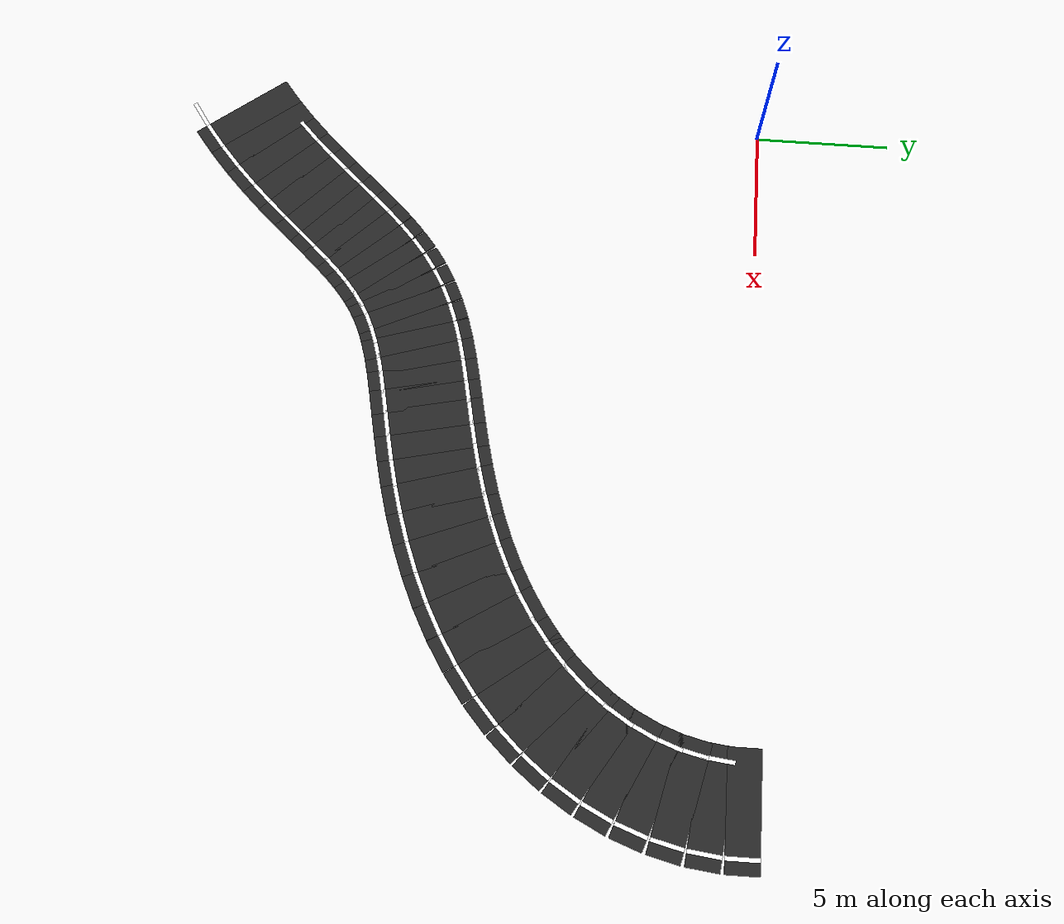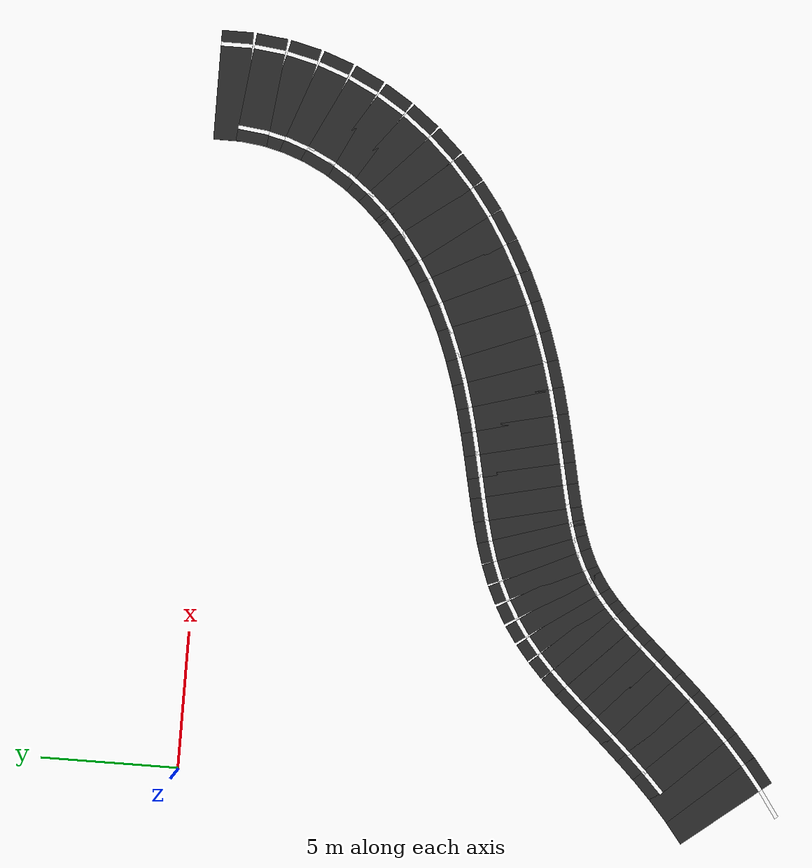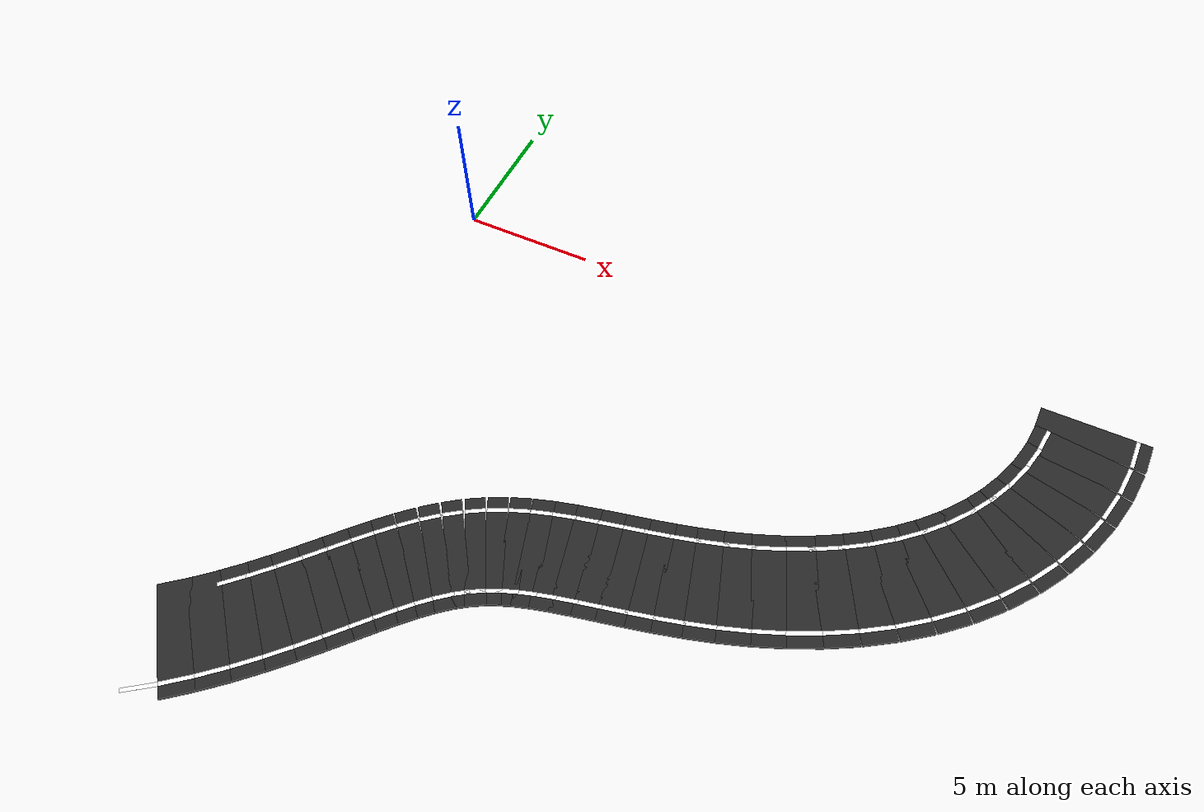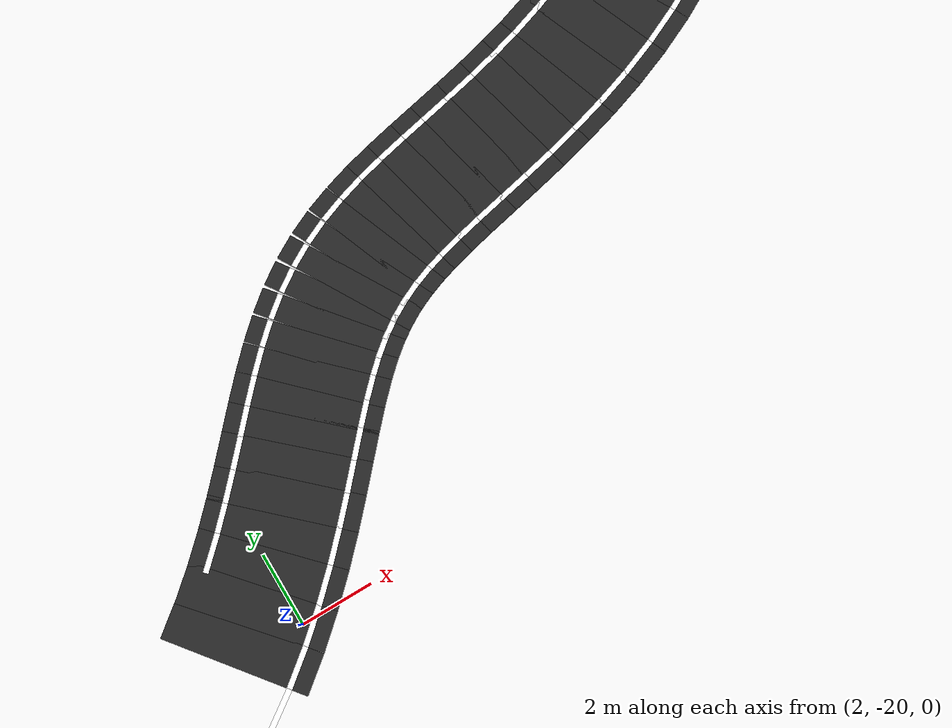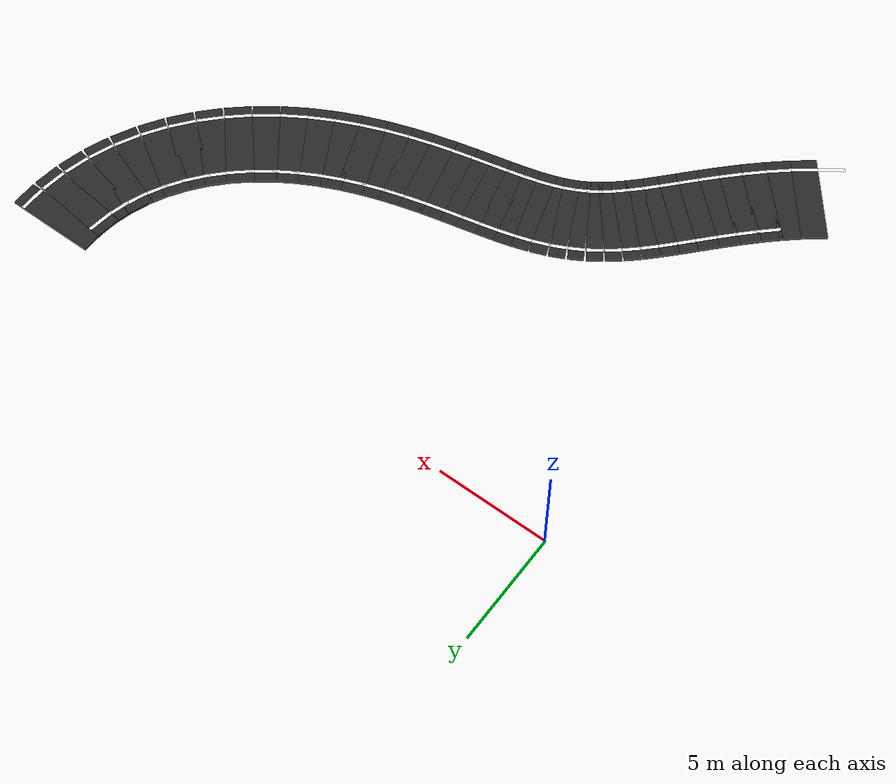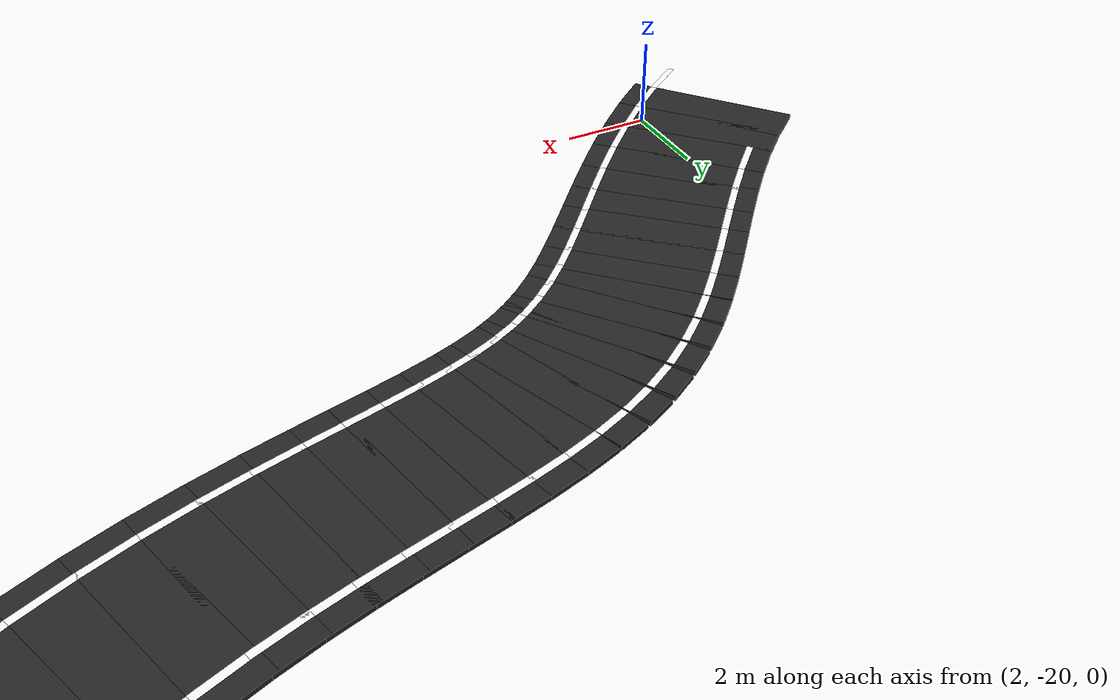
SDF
<sdf version="1.9">
 <world name="curved_race_track">
  <model name="race_track">
   <static>true</static>
   <link name="asphalt_0">
    <pose>25.0 0.0 0.05 0 0 1.5707963267948966</pose>
    <visual name="v">
     <geometry><box><size>1.1517413086948718 4.0 0.1</size></box></geometry>
     <material><ambient>0.15 0.15 0.15 1</ambient><diffuse>0.15 0.15 0.15 1</diffuse></material>
    </visual>
    <collision name="c"><geometry><box><size>1.1517413086948718 4.0 0.1</size></box></geometry></collision>
   </link>
   <link name="right_line_0">
    <pose>26.5 -9.184850993605148e-17 0.101 0 0 1.5707963267948966</pose>
    <visual name="v">
     <geometry><box><size>1.1517413086948718 0.15 0.001</size></box></geometry>
     <material><ambient>1 1 1 1</ambient><emissive>0.3 0.3 0.3 1</emissive></material>
    </visual>
   </link>
   <link name="right_line_112">
    <pose>0.438977393311072 -21.53538949489919 0.101 0 0 0.614153779554633</pose>
    <visual name="v">
     <geometry><box><size>1.1514998059888797 0.15 0.001</size></box></geometry>
     <material><ambient>1 1 1 1</ambient><emissive>0.3 0.3 0.3 1</emissive></material>
    </visual>
   </link>
   <link name="asphalt_113">
    <pose>0.41227347054374264 -19.681729926843133 0.05 0 0 0.6711042868066445</pose>
    <visual name="v">
     <geometry><box><size>1.125249442199038 4.0 0.1</size></box></geometry>
     <material><ambient>0.15 0.15 0.15 1</ambient><diffuse>0.15 0.15 0.15 1</diffuse></material>
    </visual>
    <collision name="c"><geometry><box><size>1.125249442199038 4.0 0.1</size></box></geometry></collision>
   </link>
   <link name="right_line_113">
    <pose>1.345050228775634 -20.856433089051528 0.101 0 0 0.6711042868066445</pose>
    <visual name="v">
     <geometry><box><size>1.125249442199038 0.15 0.001</size></box></geometry>
     <material><ambient>1 1 1 1</ambient><emissive>0.3 0.3 0.3 1</emissive></material>
    </visual>
   </link>
   <link name="asphalt_114">
    <pose>1.196981540121641 -19.025476766742543 0.05 0 0 0.7208431750793264</pose>
    <visual name="v">
     <geometry><box><size>1.0928661026760036 4.0 0.1</size></box></geometry>
     <material><ambient>0.15 0.15 0.15 1</ambient><diffuse>0.15 0.15 0.15 1</diffuse></material>
    </visual>
    <collision name="c"><geometry><box><size>1.0928661026760036 4.0 0.1</size></box></geometry></collision>
   </link>
   <link name="right_line_114">
    <pose>2.1870090521598753 -20.152350994599132 0.101 0 0 0.7208431750793264</pose>
    <visual name="v">
     <geometry><box><size>1.0928661026760036 0.15 0.001</size></box></geometry>
     <material><ambient>1 1 1 1</ambient><emissive>0.3 0.3 0.3 1</emissive></material>
    </visual>
   </link>
   <link name="asphalt_115">
    <pose>1.9290639076250644 -18.35381707263156 0.05 0 0 0.7627858314045766</pose>
    <visual name="v">
     <geometry><box><size>1.054758407267773 4.0 0.1</size></box></geometry>
     <material><ambient>0.15 0.15 0.15 1</ambient><diffuse>0.15 0.15 0.15 1</diffuse></material>
    </visual>
    <collision name="c"><geometry><box><size>1.054758407267773 4.0 0.1</size></box></geometry></collision>
   </link>
   <link name="left_line_115">
    <pose>0.8926568474570413 -17.269446100300655 0.101 0 0 0.7627858314045766</pose>
    <visual name="v">
     <geometry><box><size>1.054758407267773 0.15 0.001</size></box></geometry>
     <material><ambient>1 1 1 1</ambient><emissive>0.3 0.3 0.3 1</emissive></material>
    </visual>
   </link>
   <link name="right_line_115">
    <pose>2.9654709677930873 -19.438188044962466 0.101 0 0 0.7627858314045766</pose>
    <visual name="v">
     <geometry><box><size>1.054758407267773 0.15 0.001</size></box></geometry>
     <material><ambient>1 1 1 1</ambient><emissive>0.3 0.3 0.3 1</emissive></material>
    </visual>
   </link>
   <link name="asphalt_116">
    <pose>2.6106649291933066 -17.679388293790236 0.05 0 0 0.7961363461453753</pose>
    <visual name="v">
     <geometry><box><size>1.0116441791363973 4.0 0.1</size></box></geometry>
     <material><ambient>0.15 0.15 0.15 1</ambient><diffuse>0.15 0.15 0.15 1</diffuse></material>
    </visual>
    <collision name="c"><geometry><box><size>1.0116441791363973 4.0 0.1</size></box></geometry></collision>
   </link>
   <link name="left_line_116">
    <pose>1.5386765645554514 -16.63017861689955 0.101 0 0 0.7961363461453753</pose>
    <visual name="v">
     <geometry><box><size>1.0116441791363973 0.15 0.001</size></box></geometry>
     <material><ambient>1 1 1 1</ambient><emissive>0.3 0.3 0.3 1</emissive></material>
    </visual>
   </link>
   <link name="right_line_116">
    <pose>3.682653293831162 -18.728597970680923 0.101 0 0 0.7961363461453753</pose>
    <visual name="v">
     <geometry><box><size>1.0116441791363973 0.15 0.001</size></box></geometry>
     <material><ambient>1 1 1 1</ambient><emissive>0.3 0.3 0.3 1</emissive></material>
    </visual>
   </link>
   <link name="asphalt_117">
    <pose>3.2456066455473884 -17.014065868040365 0.05 0 0 0.8198519989587237</pose>
    <visual name="v">
     <geometry><box><size>0.964579854375917 4.0 0.1</size></box></geometry>
     <material><ambient>0.15 0.15 0.15 1</ambient><diffuse>0.15 0.15 0.15 1</diffuse></material>
    </visual>
    <collision name="c"><geometry><box><size>0.964579854375917 4.0 0.1</size></box></geometry></collision>
   </link>
   <link name="left_line_117">
    <pose>2.1490393671415133 -15.990571752801038 0.101 0 0 0.8198519989587237</pose>
    <visual name="v">
     <geometry><box><size>0.964579854375917 0.15 0.001</size></box></geometry>
     <material><ambient>1 1 1 1</ambient><emissive>0.3 0.3 0.3 1</emissive></material>
    </visual>
   </link>
   <link name="right_line_117">
    <pose>4.342173923953263 -18.037559983279692 0.101 0 0 0.8198519989587237</pose>
    <visual name="v">
     <geometry><box><size>0.964579854375917 0.15 0.001</size></box></geometry>
     <material><ambient>1 1 1 1</ambient><emissive>0.3 0.3 0.3 1</emissive></material>
    </visual>
   </link>
   <link name="asphalt_118">
    <pose>3.839235788770516 -16.368665314440403 0.05 0 0 0.8326241010271148</pose>
    <visual name="v">
     <geometry><box><size>0.9149951303041162 4.0 0.1</size></box></geometry>
     <material><ambient>0.15 0.15 0.15 1</ambient><diffuse>0.15 0.15 0.15 1</diffuse></material>
    </visual>
    <collision name="c"><geometry><box><size>0.9149951303041162 4.0 0.1</size></box></geometry></collision>
   </link>
   <link name="left_line_118">
    <pose>2.7296861328839057 -15.359259766049716 0.101 0 0 0.8326241010271148</pose>
    <visual name="v">
     <geometry><box><size>0.9149951303041162 0.15 0.001</size></box></geometry>
     <material><ambient>1 1 1 1</ambient><emissive>0.3 0.3 0.3 1</emissive></material>
    </visual>
   </link>
   <link name="right_line_118">
    <pose>4.948785444657126 -17.37807086283109 0.101 0 0 0.8326241010271148</pose>
    <visual name="v">
     <geometry><box><size>0.9149951303041162 0.15 0.001</size></box></geometry>
     <material><ambient>1 1 1 1</ambient><emissive>0.3 0.3 0.3 1</emissive></material>
    </visual>
   </link>
   <link name="asphalt_119">
    <pose>4.398225849703698 -15.7526748644423 0.05 0 0 0.8329008863833195</pose>
    <visual name="v">
     <geometry><box><size>0.8647287213029898 4.0 0.1</size></box></geometry>
     <material><ambient>0.15 0.15 0.15 1</ambient><diffuse>0.15 0.15 0.15 1</diffuse></material>
    </visual>
    <collision name="c"><geometry><box><size>0.8647287213029898 4.0 0.1</size></box></geometry></collision>
   </link>
   <link name="left_line_119">
    <pose>3.2883968476477614 -14.74357646180977 0.101 0 0 0.8329008863833195</pose>
    <visual name="v">
     <geometry><box><size>0.8647287213029898 0.15 0.001</size></box></geometry>
     <material><ambient>1 1 1 1</ambient><emissive>0.3 0.3 0.3 1</emissive></material>
    </visual>
   </link>
   <link name="right_line_119">
    <pose>5.508054851759634 -16.76177326707483 0.101 0 0 0.8329008863833195</pose>
    <visual name="v">
     <geometry><box><size>0.8647287213029898 0.15 0.001</size></box></geometry>
     <material><ambient>1 1 1 1</ambient><emissive>0.3 0.3 0.3 1</emissive></material>
    </visual>
   </link>
   <link name="asphalt_120">
    <pose>4.9303398874989455 -15.174025904434007 0.05 0 0 0.8190008985651853</pose>
    <visual name="v">
     <geometry><box><size>0.8160515710137803 4.0 0.1</size></box></geometry>
     <material><ambient>0.15 0.15 0.15 1</ambient><diffuse>0.15 0.15 0.15 1</diffuse></material>
    </visual>
    <collision name="c"><geometry><box><size>0.8160515710137803 4.0 0.1</size></box></geometry></collision>
   </link>
   <link name="left_line_120">
    <pose>3.834644102393395 -14.149598871160318 0.101 0 0 0.8190008985651853</pose>
    <visual name="v">
     <geometry><box><size>0.8160515710137803 0.15 0.001</size></box></geometry>
     <material><ambient>1 1 1 1</ambient><emissive>0.3 0.3 0.3 1</emissive></material>
    </visual>
   </link>
   <link name="right_line_120">
    <pose>6.026035672604496 -16.198452937707696 0.101 0 0 0.8190008985651853</pose>
    <visual name="v">
     <geometry><box><size>0.8160515710137803 0.15 0.001</size></box></geometry>
     <material><ambient>1 1 1 1</ambient><emissive>0.3 0.3 0.3 1</emissive></material>
    </visual>
   </link>
   <link name="asphalt_121">
    <pose>5.444160878712941 -14.6389074474551 0.05 0 0 0.7893931278671149</pose>
    <visual name="v">
     <geometry><box><size>0.7716463724455348 4.0 0.1</size></box></geometry>
     <material><ambient>0.15 0.15 0.15 1</ambient><diffuse>0.15 0.15 0.15 1</diffuse></material>
    </visual>
    <collision name="c"><geometry><box><size>0.7716463724455348 4.0 0.1</size></box></geometry></collision>
   </link>
   <link name="left_line_121">
    <pose>4.379271882423113 -13.582493028024523 0.101 0 0 0.7893931278671149</pose>
    <visual name="v">
     <geometry><box><size>0.7716463724455348 0.15 0.001</size></box></geometry>
     <material><ambient>1 1 1 1</ambient><emissive>0.3 0.3 0.3 1</emissive></material>
    </visual>
   </link>
   <link name="right_line_121">
    <pose>6.509049875002768 -15.695321866885678 0.101 0 0 0.7893931278671149</pose>
    <visual name="v">
     <geometry><box><size>0.7716463724455348 0.15 0.001</size></box></geometry>
     <material><ambient>1 1 1 1</ambient><emissive>0.3 0.3 0.3 1</emissive></material>
    </visual>
   </link>
   <link name="asphalt_122">
    <pose>5.948797328050253 -14.151629624000888 0.05 0 0 0.7432291564322886</pose>
    <visual name="v">
     <geometry><box><size>0.7344883325544567 4.0 0.1</size></box></geometry>
     <material><ambient>0.15 0.15 0.15 1</ambient><diffuse>0.15 0.15 0.15 1</diffuse></material>
    </visual>
    <collision name="c"><geometry><box><size>0.7344883325544567 4.0 0.1</size></box></geometry></collision>
   </link>
   <link name="left_line_122">
    <pose>4.93379379440341 -13.04719862720461 0.101 0 0 0.7432291564322886</pose>
    <visual name="v">
     <geometry><box><size>0.7344883325544567 0.15 0.001</size></box></geometry>
     <material><ambient>1 1 1 1</ambient><emissive>0.3 0.3 0.3 1</emissive></material>
    </visual>
   </link>
   <link name="right_line_122">
    <pose>6.963800861697095 -15.256060620797166 0.101 0 0 0.7432291564322886</pose>
    <visual name="v">
     <geometry><box><size>0.7344883325544567 0.15 0.001</size></box></geometry>
     <material><ambient>1 1 1 1</ambient><emissive>0.3 0.3 0.3 1</emissive></material>
    </visual>
   </link>
   <link name="asphalt_123">
    <pose>6.453572570465406 -13.714539815559204 0.05 0 0 0.6811395040169054</pose>
    <visual name="v">
     <geometry><box><size>0.707559002608347 4.0 0.1</size></box></geometry>
     <material><ambient>0.15 0.15 0.15 1</ambient><diffuse>0.15 0.15 0.15 1</diffuse></material>
    </visual>
    <collision name="c"><geometry><box><size>0.707559002608347 4.0 0.1</size></box></geometry></collision>
   </link>
   <link name="left_line_123">
    <pose>5.509054576221962 -12.549256262705933 0.101 0 0 0.6811395040169054</pose>
    <visual name="v">
     <geometry><box><size>0.707559002608347 0.15 0.001</size></box></geometry>
     <material><ambient>1 1 1 1</ambient><emissive>0.3 0.3 0.3 1</emissive></material>
    </visual>
   </link>
   <link name="right_line_123">
    <pose>7.39809056470885 -14.879823368412476 0.101 0 0 0.6811395040169054</pose>
    <visual name="v">
     <geometry><box><size>0.707559002608347 0.15 0.001</size></box></geometry>
     <material><ambient>1 1 1 1</ambient><emissive>0.3 0.3 0.3 1</emissive></material>
    </visual>
   </link>
   <link name="asphalt_124">
    <pose>6.967706664881618 -13.327993588060306 0.05 0 0 0.6060704634767349</pose>
    <visual name="v">
     <geometry><box><size>0.6933651874997708 4.0 0.1</size></box></geometry>
     <material><ambient>0.15 0.15 0.15 1</ambient><diffuse>0.15 0.15 0.15 1</diffuse></material>
    </visual>
    <collision name="c"><geometry><box><size>0.6933651874997708 4.0 0.1</size></box></geometry></collision>
   </link>
   <link name="left_line_124">
    <pose>6.113243351867827 -12.095154406855597 0.101 0 0 0.6060704634767349</pose>
    <visual name="v">
     <geometry><box><size>0.6933651874997708 0.15 0.001</size></box></geometry>
     <material><ambient>1 1 1 1</ambient><emissive>0.3 0.3 0.3 1</emissive></material>
    </visual>
   </link>
   <link name="right_line_124">
    <pose>7.822169977895409 -14.560832769265014 0.101 0 0 0.6060704634767349</pose>
    <visual name="v">
     <geometry><box><size>0.6933651874997708 0.15 0.001</size></box></geometry>
     <material><ambient>1 1 1 1</ambient><emissive>0.3 0.3 0.3 1</emissive></material>
    </visual>
   </link>
   <link name="asphalt_125">
    <pose>7.500000000000002 -12.990381056766578 0.05 0 0 0.5235987755982997</pose>
    <visual name="v">
     <geometry><box><size>0.6933651874997535 4.0 0.1</size></box></geometry>
     <material><ambient>0.15 0.15 0.15 1</ambient><diffuse>0.15 0.15 0.15 1</diffuse></material>
    </visual>
    <collision name="c"><geometry><box><size>0.6933651874997535 4.0 0.1</size></box></geometry></collision>
   </link>
   <link name="left_line_125">
    <pose>6.750000000000001 -11.69134295108992 0.101 0 0 0.5235987755982997</pose>
    <visual name="v">
     <geometry><box><size>0.6933651874997535 0.15 0.001</size></box></geometry>
     <material><ambient>1 1 1 1</ambient><emissive>0.3 0.3 0.3 1</emissive></material>
    </visual>
   </link>
   <link name="right_line_125">
    <pose>8.250000000000004 -14.289419162443236 0.101 0 0 0.5235987755982997</pose>
    <visual name="v">
     <geometry><box><size>0.6933651874997535 0.15 0.001</size></box></geometry>
     <material><ambient>1 1 1 1</ambient><emissive>0.3 0.3 0.3 1</emissive></material>
    </visual>
   </link>
   <link name="asphalt_126">
    <pose>8.058527696295517 -12.698207771935786 0.05 0 0 0.4411270877198633</pose>
    <visual name="v">
     <geometry><box><size>0.7075590026083473 4.0 0.1</size></box></geometry>
     <material><ambient>0.15 0.15 0.15 1</ambient><diffuse>0.15 0.15 0.15 1</diffuse></material>
    </visual>
    <collision name="c"><geometry><box><size>0.7075590026083473 4.0 0.1</size></box></geometry></collision>
   </link>
   <link name="left_line_126">
    <pose>7.418089303098327 -11.341801245661674 0.101 0 0 0.4411270877198633</pose>
    <visual name="v">
     <geometry><box><size>0.7075590026083473 0.15 0.001</size></box></geometry>
     <material><ambient>1 1 1 1</ambient><emissive>0.3 0.3 0.3 1</emissive></material>
    </visual>
   </link>
   <link name="right_line_126">
    <pose>8.698966089492707 -14.054614298209898 0.101 0 0 0.4411270877198633</pose>
    <visual name="v">
     <geometry><box><size>0.7075590026083473 0.15 0.001</size></box></geometry>
     <material><ambient>1 1 1 1</ambient><emissive>0.3 0.3 0.3 1</emissive></material>
    </visual>
   </link>
   <link name="asphalt_127">
    <pose>8.650353596254709 -12.44622769896909 0.05 0 0 0.36605804717969276</pose>
    <visual name="v">
     <geometry><box><size>0.7344883325544719 4.0 0.1</size></box></geometry>
     <material><ambient>0.15 0.15 0.15 1</ambient><diffuse>0.15 0.15 0.15 1</diffuse></material>
    </visual>
    <collision name="c"><geometry><box><size>0.7344883325544719 4.0 0.1</size></box></geometry></collision>
   </link>
   <link name="left_line_127">
    <pose>8.113447433993311 -11.045609345196107 0.101 0 0 0.36605804717969276</pose>
    <visual name="v">
     <geometry><box><size>0.7344883325544719 0.15 0.001</size></box></geometry>
     <material><ambient>1 1 1 1</ambient><emissive>0.3 0.3 0.3 1</emissive></material>
    </visual>
   </link>
   <link name="right_line_127">
    <pose>9.187259758516106 -13.846846052742071 0.101 0 0 0.36605804717969276</pose>
    <visual name="v">
     <geometry><box><size>0.7344883325544719 0.15 0.001</size></box></geometry>
     <material><ambient>1 1 1 1</ambient><emissive>0.3 0.3 0.3 1</emissive></material>
    </visual>
   </link>
   <link name="asphalt_128">
    <pose>9.28127209530807 -12.227624420056955 0.05 0 0 0.30396839476430887</pose>
    <visual name="v">
     <geometry><box><size>0.7716463724455166 4.0 0.1</size></box></geometry>
     <material><ambient>0.15 0.15 0.15 1</ambient><diffuse>0.15 0.15 0.15 1</diffuse></material>
    </visual>
    <collision name="c"><geometry><box><size>0.7716463724455166 4.0 0.1</size></box></geometry></collision>
   </link>
   <link name="left_line_128">
    <pose>8.832308562178945 -10.796390076589676 0.101 0 0 0.30396839476430887</pose>
    <visual name="v">
     <geometry><box><size>0.7716463724455166 0.15 0.001</size></box></geometry>
     <material><ambient>1 1 1 1</ambient><emissive>0.3 0.3 0.3 1</emissive></material>
    </visual>
   </link>
   <link name="right_line_128">
    <pose>9.730235628437196 -13.658858763524234 0.101 0 0 0.30396839476430887</pose>
    <visual name="v">
     <geometry><box><size>0.7716463724455166 0.15 0.001</size></box></geometry>
     <material><ambient>1 1 1 1</ambient><emissive>0.3 0.3 0.3 1</emissive></material>
    </visual>
   </link>
   <link name="asphalt_129">
    <pose>9.955585293788847 -12.034235346982374 0.05 0 0 0.25780442332948283</pose>
    <visual name="v">
     <geometry><box><size>0.8160515710137942 4.0 0.1</size></box></geometry>
     <material><ambient>0.15 0.15 0.15 1</ambient><diffuse>0.15 0.15 0.15 1</diffuse></material>
    </visual>
    <collision name="c"><geometry><box><size>0.8160515710137942 4.0 0.1</size></box></geometry></collision>
   </link>
   <link name="left_line_129">
    <pose>9.573148067782691 -10.583807214269582 0.101 0 0 0.25780442332948283</pose>
    <visual name="v">
     <geometry><box><size>0.8160515710137942 0.15 0.001</size></box></geometry>
     <material><ambient>1 1 1 1</ambient><emissive>0.3 0.3 0.3 1</emissive></material>
    </visual>
   </link>
   <link name="right_line_129">
    <pose>10.338022519795002 -13.484663479695167 0.101 0 0 0.25780442332948283</pose>
    <visual name="v">
     <geometry><box><size>0.8160515710137942 0.15 0.001</size></box></geometry>
     <material><ambient>1 1 1 1</ambient><emissive>0.3 0.3 0.3 1</emissive></material>
    </visual>
   </link>
   <link name="asphalt_130">
    <pose>10.675921967173519 -11.856812544082798 0.05 0 0 0.22819665263141317</pose>
    <visual name="v">
     <geometry><box><size>0.8647287213029772 4.0 0.1</size></box></geometry>
     <material><ambient>0.15 0.15 0.15 1</ambient><diffuse>0.15 0.15 0.15 1</diffuse></material>
    </visual>
    <collision name="c"><geometry><box><size>0.8647287213029772 4.0 0.1</size></box></geometry></collision>
   </link>
   <link name="left_line_130">
    <pose>10.336590024587752 -10.395698642725012 0.101 0 0 0.22819665263141317</pose>
    <visual name="v">
     <geometry><box><size>0.8647287213029772 0.15 0.001</size></box></geometry>
     <material><ambient>1 1 1 1</ambient><emissive>0.3 0.3 0.3 1</emissive></material>
    </visual>
   </link>
   <link name="right_line_130">
    <pose>11.015253909759286 -13.317926445440584 0.101 0 0 0.22819665263141317</pose>
    <visual name="v">
     <geometry><box><size>0.8647287213029772 0.15 0.001</size></box></geometry>
     <material><ambient>1 1 1 1</ambient><emissive>0.3 0.3 0.3 1</emissive></material>
    </visual>
   </link>
   <link name="asphalt_131">
    <pose>11.44310368531176 -11.685312749645956 0.05 0 0 0.21429666481327805</pose>
    <visual name="v">
     <geometry><box><size>0.914995130304108 4.0 0.1</size></box></geometry>
     <material><ambient>0.15 0.15 0.15 1</ambient><diffuse>0.15 0.15 0.15 1</diffuse></material>
    </visual>
    <collision name="c"><geometry><box><size>0.914995130304108 4.0 0.1</size></box></geometry></collision>
   </link>
   <link name="left_line_131">
    <pose>11.12411333474166 -10.219623438692517 0.101 0 0 0.21429666481327805</pose>
    <visual name="v">
     <geometry><box><size>0.914995130304108 0.15 0.001</size></box></geometry>
     <material><ambient>1 1 1 1</ambient><emissive>0.3 0.3 0.3 1</emissive></material>
    </visual>
   </link>
   <link name="right_line_131">
    <pose>11.76209403588186 -13.151002060599394 0.101 0 0 0.21429666481327805</pose>
    <visual name="v">
     <geometry><box><size>0.914995130304108 0.15 0.001</size></box></geometry>
     <material><ambient>1 1 1 1</ambient><emissive>0.3 0.3 0.3 1</emissive></material>
    </visual>
   </link>
   <link name="asphalt_132">
    <pose>12.256062093965307 -11.509208381413853 0.05 0 0 0.2145734501694828</pose>
    <visual name="v">
     <geometry><box><size>0.9645798543759153 4.0 0.1</size></box></geometry>
     <material><ambient>0.15 0.15 0.15 1</ambient><diffuse>0.15 0.15 0.15 1</diffuse></material>
    </visual>
    <collision name="c"><geometry><box><size>0.9645798543759153 4.0 0.1</size></box></geometry></collision>
   </link>
   <link name="left_line_132">
    <pose>11.936666074281314 -10.043607418460422 0.101 0 0 0.2145734501694828</pose>
    <visual name="v">
     <geometry><box><size>0.9645798543759153 0.15 0.001</size></box></geometry>
     <material><ambient>1 1 1 1</ambient><emissive>0.3 0.3 0.3 1</emissive></material>
    </visual>
   </link>
   <link name="right_line_132">
    <pose>12.575458113649299 -12.974809344367284 0.101 0 0 0.2145734501694828</pose>
    <visual name="v">
     <geometry><box><size>0.9645798543759153 0.15 0.001</size></box></geometry>
     <material><ambient>1 1 1 1</ambient><emissive>0.3 0.3 0.3 1</emissive></material>
    </visual>
   </link>
   <link name="asphalt_133">
    <pose>13.111809940610977 -11.317810739755814 0.05 0 0 0.22734555223787425</pose>
    <visual name="v">
     <geometry><box><size>1.0116441791364041 4.0 0.1</size></box></geometry>
     <material><ambient>0.15 0.15 0.15 1</ambient><diffuse>0.15 0.15 0.15 1</diffuse></material>
    </visual>
    <collision name="c"><geometry><box><size>1.0116441791364041 4.0 0.1</size></box></geometry></collision>
   </link>
   <link name="left_line_133">
    <pose>12.77372167539278 -9.856408562077899 0.101 0 0 0.22734555223787425</pose>
    <visual name="v">
     <geometry><box><size>1.0116441791364041 0.15 0.001</size></box></geometry>
     <material><ambient>1 1 1 1</ambient><emissive>0.3 0.3 0.3 1</emissive></material>
    </visual>
   </link>
   <link name="right_line_133">
    <pose>13.449898205829173 -12.779212917433728 0.101 0 0 0.22734555223787425</pose>
    <visual name="v">
     <geometry><box><size>1.0116441791364041 0.15 0.001</size></box></geometry>
     <material><ambient>1 1 1 1</ambient><emissive>0.3 0.3 0.3 1</emissive></material>
    </visual>
   </link>
   <link name="asphalt_134">
    <pose>14.0054669211949 -11.10059629634563 0.05 0 0 0.25106120505122187</pose>
    <visual name="v">
     <geometry><box><size>1.0547584072677958 4.0 0.1</size></box></geometry>
     <material><ambient>0.15 0.15 0.15 1</ambient><diffuse>0.15 0.15 0.15 1</diffuse></material>
    </visual>
    <collision name="c"><geometry><box><size>1.0547584072677958 4.0 0.1</size></box></geometry></collision>
   </link>
   <link name="left_line_134">
    <pose>13.632818869430032 -9.647622301562569 0.101 0 0 0.25106120505122187</pose>
    <visual name="v">
     <geometry><box><size>1.0547584072677958 0.15 0.001</size></box></geometry>
     <material><ambient>1 1 1 1</ambient><emissive>0.3 0.3 0.3 1</emissive></material>
    </visual>
   </link>
   <link name="right_line_134">
    <pose>14.378114972959768 -12.553570291128691 0.101 0 0 0.25106120505122187</pose>
    <visual name="v">
     <geometry><box><size>1.0547584072677958 0.15 0.001</size></box></geometry>
     <material><ambient>1 1 1 1</ambient><emissive>0.3 0.3 0.3 1</emissive></material>
    </visual>
   </link>
   <link name="asphalt_135">
    <pose>14.930339887498945 -10.847526885842765 0.05 0 0 0.2844117197920213</pose>
    <visual name="v">
     <geometry><box><size>1.0928661026759754 4.0 0.1</size></box></geometry>
     <material><ambient>0.15 0.15 0.15 1</ambient><diffuse>0.15 0.15 0.15 1</diffuse></material>
    </visual>
    <collision name="c"><geometry><box><size>1.0928661026759754 4.0 0.1</size></box></geometry></collision>
   </link>
   <link name="left_line_135">
    <pose>14.509450608417959 -9.407786556910256 0.101 0 0 0.2844117197920213</pose>
    <visual name="v">
     <geometry><box><size>1.0928661026759754 0.15 0.001</size></box></geometry>
     <material><ambient>1 1 1 1</ambient><emissive>0.3 0.3 0.3 1</emissive></material>
    </visual>
   </link>
   <link name="right_line_135">
    <pose>15.351229166579932 -12.287267214775273 0.101 0 0 0.2844117197920213</pose>
    <visual name="v">
     <geometry><box><size>1.0928661026759754 0.15 0.001</size></box></geometry>
     <material><ambient>1 1 1 1</ambient><emissive>0.3 0.3 0.3 1</emissive></material>
    </visual>
   </link>
   <link name="asphalt_136">
    <pose>15.878055429048826 -10.549354804977638 0.05 0 0 0.3263543761172706</pose>
    <visual name="v">
     <geometry><box><size>1.1252494421990478 4.0 0.1</size></box></geometry>
     <material><ambient>0.15 0.15 0.15 1</ambient><diffuse>0.15 0.15 0.15 1</diffuse></material>
    </visual>
    <collision name="c"><geometry><box><size>1.1252494421990478 4.0 0.1</size></box></geometry></collision>
   </link>
   <link name="left_line_136">
    <pose>15.397167476874165 -9.128528715178728 0.101 0 0 0.3263543761172706</pose>
    <visual name="v">
     <geometry><box><size>1.1252494421990478 0.15 0.001</size></box></geometry>
     <material><ambient>1 1 1 1</ambient><emissive>0.3 0.3 0.3 1</emissive></material>
    </visual>
   </link>
   <link name="right_line_136">
    <pose>16.358943381223487 -11.970180894776547 0.101 0 0 0.3263543761172706</pose>
    <visual name="v">
     <geometry><box><size>1.1252494421990478 0.15 0.001</size></box></geometry>
     <material><ambient>1 1 1 1</ambient><emissive>0.3 0.3 0.3 1</emissive></material>
    </visual>
   </link>
   <link name="asphalt_137">
    <pose>16.838741371798715 -10.197904262218833 0.05 0 0 0.37609326438995266</pose>
    <visual name="v">
     <geometry><box><size>1.1514998059889001 4.0 0.1</size></box></geometry>
     <material><ambient>0.15 0.15 0.15 1</ambient><diffuse>0.15 0.15 0.15 1</diffuse></material>
    </visual>
    <collision name="c"><geometry><box><size>1.1514998059889001 4.0 0.1</size></box></geometry></collision>
   </link>
   <link name="left_line_137">
    <pose>16.28780697053628 -8.802744312426121 0.101 0 0 0.37609326438995266</pose>
    <visual name="v">
     <geometry><box><size>1.1514998059889001 0.15 0.001</size></box></geometry>
     <material><ambient>1 1 1 1</ambient><emissive>0.3 0.3 0.3 1</emissive></material>
    </visual>
   </link>
   <link name="right_line_137">
    <pose>17.38967577306115 -11.593064212011544 0.101 0 0 0.37609326438995266</pose>
    <visual name="v">
     <geometry><box><size>1.1514998059889001 0.15 0.001</size></box></geometry>
     <material><ambient>1 1 1 1</ambient><emissive>0.3 0.3 0.3 1</emissive></material>
    </visual>
   </link>
   <link name="asphalt_138">
    <pose>17.801252359412082 -9.78632129944432 0.05 0 0 0.43304377164196517</pose>
    <visual name="v">
     <geometry><box><size>1.1714934133066284 4.0 0.1</size></box></geometry>
     <material><ambient>0.15 0.15 0.15 1</ambient><diffuse>0.15 0.15 0.15 1</diffuse></material>
    </visual>
    <collision name="c"><geometry><box><size>1.1714934133066284 4.0 0.1</size></box></geometry></collision>
   </link>
   <link name="left_line_138">
    <pose>17.171799032504463 -8.42478227714458 0.101 0 0 0.43304377164196517</pose>
    <visual name="v">
     <geometry><box><size>1.1714934133066284 0.15 0.001</size></box></geometry>
     <material><ambient>1 1 1 1</ambient><emissive>0.3 0.3 0.3 1</emissive></material>
    </visual>
   </link>
   <link name="right_line_138">
    <pose>18.4307056863197 -11.147860321744059 0.101 0 0 0.43304377164196517</pose>
    <visual name="v">
     <geometry><box><size>1.1714934133066284 0.15 0.001</size></box></geometry>
     <material><ambient>1 1 1 1</ambient><emissive>0.3 0.3 0.3 1</emissive></material>
    </visual>
   </link>
   <link name="asphalt_139">
    <pose>18.75343344040603 -9.309285205632204 0.05 0 0 0.4967923461851671</pose>
    <visual name="v">
     <geometry><box><size>1.1853701260313456 4.0 0.1</size></box></geometry>
     <material><ambient>0.15 0.15 0.15 1</ambient><diffuse>0.15 0.15 0.15 1</diffuse></material>
    </visual>
    <collision name="c"><geometry><box><size>1.1853701260313456 4.0 0.1</size></box></geometry></collision>
   </link>
   <link name="left_line_139">
    <pose>18.038521296456896 -7.990611392123324 0.101 0 0 0.4967923461851671</pose>
    <visual name="v">
     <geometry><box><size>1.1853701260313456 0.15 0.001</size></box></geometry>
     <material><ambient>1 1 1 1</ambient><emissive>0.3 0.3 0.3 1</emissive></material>
    </visual>
   </link>
   <link name="right_line_139">
    <pose>19.468345584355166 -10.627959019141084 0.101 0 0 0.4967923461851671</pose>
    <visual name="v">
     <geometry><box><size>1.1853701260313456 0.15 0.001</size></box></geometry>
     <material><ambient>1 1 1 1</ambient><emissive>0.3 0.3 0.3 1</emissive></material>
    </visual>
   </link>
   <link name="asphalt_140">
    <pose>19.682414510580028 -8.7631755362432 0.05 0 0 0.5670555777992988</pose>
    <visual name="v">
     <geometry><box><size>1.193512979184859 4.0 0.1</size></box></geometry>
     <material><ambient>0.15 0.15 0.15 1</ambient><diffuse>0.15 0.15 0.15 1</diffuse></material>
    </visual>
    <collision name="c"><geometry><box><size>1.193512979184859 4.0 0.1</size></box></geometry></collision>
   </link>
   <link name="left_line_140">
    <pose>18.876688308791273 -7.49794619428536 0.101 0 0 0.5670555777992988</pose>
    <visual name="v">
     <geometry><box><size>1.193512979184859 0.15 0.001</size></box></geometry>
     <material><ambient>1 1 1 1</ambient><emissive>0.3 0.3 0.3 1</emissive></material>
    </visual>
   </link>
   <link name="right_line_140">
    <pose>20.488140712368782 -10.028404878201039 0.101 0 0 0.5670555777992988</pose>
    <visual name="v">
     <geometry><box><size>1.193512979184859 0.15 0.001</size></box></geometry>
     <material><ambient>1 1 1 1</ambient><emissive>0.3 0.3 0.3 1</emissive></material>
    </visual>
   </link>
   <link name="asphalt_141">
    <pose>20.574927585141825 -8.14619010994253 0.05 0 0 0.643638903945526</pose>
    <visual name="v">
     <geometry><box><size>1.1965258177165055 4.0 0.1</size></box></geometry>
     <material><ambient>0.15 0.15 0.15 1</ambient><diffuse>0.15 0.15 0.15 1</diffuse></material>
    </visual>
    <collision name="c"><geometry><box><size>1.1965258177165055 4.0 0.1</size></box></geometry></collision>
   </link>
   <link name="left_line_141">
    <pose>19.674762239504034 -6.946314136971658 0.101 0 0 0.643638903945526</pose>
    <visual name="v">
     <geometry><box><size>1.1965258177165055 0.15 0.001</size></box></geometry>
     <material><ambient>1 1 1 1</ambient><emissive>0.3 0.3 0.3 1</emissive></material>
    </visual>
   </link>
   <link name="right_line_141">
    <pose>21.475092930779617 -9.346066082913403 0.101 0 0 0.643638903945526</pose>
    <visual name="v">
     <geometry><box><size>1.1965258177165055 0.15 0.001</size></box></geometry>
     <material><ambient>1 1 1 1</ambient><emissive>0.3 0.3 0.3 1</emissive></material>
    </visual>
   </link>
   <link name="asphalt_142">
    <pose>21.417638223340845 -7.458410741258802 0.05 0 0 0.7263937155008071</pose>
    <visual name="v">
     <geometry><box><size>1.195206337205942 4.0 0.1</size></box></geometry>
     <material><ambient>0.15 0.15 0.15 1</ambient><diffuse>0.15 0.15 0.15 1</diffuse></material>
    </visual>
    <collision name="c"><geometry><box><size>1.195206337205942 4.0 0.1</size></box></geometry></collision>
   </link>
   <link name="left_line_142">
    <pose>20.42137123305919 -6.337049031516966 0.101 0 0 0.7263937155008071</pose>
    <visual name="v">
     <geometry><box><size>1.195206337205942 0.15 0.001</size></box></geometry>
     <material><ambient>1 1 1 1</ambient><emissive>0.3 0.3 0.3 1</emissive></material>
    </visual>
   </link>
   <link name="right_line_142">
    <pose>22.4139052136225 -8.579772451000636 0.101 0 0 0.7263937155008071</pose>
    <visual name="v">
     <geometry><box><size>1.195206337205942 0.15 0.001</size></box></geometry>
     <material><ambient>1 1 1 1</ambient><emissive>0.3 0.3 0.3 1</emissive></material>
    </visual>
   </link>
   <link name="asphalt_143">
    <pose>22.197482018546857 -6.701814944752318 0.05 0 0 0.815171453326417</pose>
    <visual name="v">
     <geometry><box><size>1.1905118190556854 4.0 0.1</size></box></geometry>
     <material><ambient>0.15 0.15 0.15 1</ambient><diffuse>0.15 0.15 0.15 1</diffuse></material>
    </visual>
    <collision name="c"><geometry><box><size>1.1905118190556854 4.0 0.1</size></box></geometry></collision>
   </link>
   <link name="left_line_143">
    <pose>21.10571724506638 -5.673199526149658 0.101 0 0 0.815171453326417</pose>
    <visual name="v">
     <geometry><box><size>1.1905118190556854 0.15 0.001</size></box></geometry>
     <material><ambient>1 1 1 1</ambient><emissive>0.3 0.3 0.3 1</emissive></material>
    </visual>
   </link>
   <link name="right_line_143">
    <pose>23.289246792027335 -7.730430363354977 0.101 0 0 0.815171453326417</pose>
    <visual name="v">
     <geometry><box><size>1.1905118190556854 0.15 0.001</size></box></geometry>
     <material><ambient>1 1 1 1</ambient><emissive>0.3 0.3 0.3 1</emissive></material>
    </visual>
   </link>
   <link name="asphalt_144">
    <pose>22.901996910129757 -5.880233371797855 0.05 0 0 0.9097741710061537</pose>
    <visual name="v">
     <geometry><box><size>1.183515067173741 4.0 0.1</size></box></geometry>
     <material><ambient>0.15 0.15 0.15 1</ambient><diffuse>0.15 0.15 0.15 1</diffuse></material>
    </visual>
    <collision name="c"><geometry><box><size>1.183515067173741 4.0 0.1</size></box></geometry></collision>
   </link>
   <link name="left_line_144">
    <pose>21.71794923316846 -4.9593473317893455 0.101 0 0 0.9097741710061537</pose>
    <visual name="v">
     <geometry><box><size>1.183515067173741 0.15 0.001</size></box></geometry>
     <material><ambient>1 1 1 1</ambient><emissive>0.3 0.3 0.3 1</emissive></material>
    </visual>
   </link>
   <link name="right_line_144">
    <pose>24.086044587091052 -6.801119411806365 0.101 0 0 0.9097741710061537</pose>
    <visual name="v">
     <geometry><box><size>1.183515067173741 0.15 0.001</size></box></geometry>
     <material><ambient>1 1 1 1</ambient><emissive>0.3 0.3 0.3 1</emissive></material>
    </visual>
   </link>
   <link name="asphalt_145">
    <pose>23.51964217467976 -4.999254272359185 0.05 0 0 1.0099029445805539</pose>
    <visual name="v">
     <geometry><box><size>1.175348766869148 4.0 0.1</size></box></geometry>
     <material><ambient>0.15 0.15 0.15 1</ambient><diffuse>0.15 0.15 0.15 1</diffuse></material>
    </visual>
    <collision name="c"><geometry><box><size>1.175348766869148 4.0 0.1</size></box></geometry></collision>
   </link>
   <link name="left_line_145">
    <pose>22.249471843683427 -4.201339909625523 0.101 0 0 1.0099029445805539</pose>
    <visual name="v">
     <geometry><box><size>1.175348766869148 0.15 0.001</size></box></geometry>
     <material><ambient>1 1 1 1</ambient><emissive>0.3 0.3 0.3 1</emissive></material>
    </visual>
   </link>
   <link name="right_line_145">
    <pose>24.789812505676093 -5.797168635092846 0.101 0 0 1.0099029445805539</pose>
    <visual name="v">
     <geometry><box><size>1.175348766869148 0.15 0.001</size></box></geometry>
     <material><ambient>1 1 1 1</ambient><emissive>0.3 0.3 0.3 1</emissive></material>
    </visual>
   </link>
   <link name="asphalt_146">
    <pose>24.040095310318407 -4.066077768171354 0.05 0 0 1.1151083193804645</pose>
    <visual name="v">
     <geometry><box><size>1.167138017327684 4.0 0.1</size></box></geometry>
     <material><ambient>0.15 0.15 0.15 1</ambient><diffuse>0.15 0.15 0.15 1</diffuse></material>
    </visual>
    <collision name="c"><geometry><box><size>1.167138017327684 4.0 0.1</size></box></geometry></collision>
   </link>
   <link name="left_line_146">
    <pose>22.693157616906888 -3.405957438180479 0.101 0 0 1.1151083193804645</pose>
    <visual name="v">
     <geometry><box><size>1.167138017327684 0.15 0.001</size></box></geometry>
     <material><ambient>1 1 1 1</ambient><emissive>0.3 0.3 0.3 1</emissive></material>
    </visual>
   </link>
   <link name="right_line_146">
    <pose>25.387033003729925 -4.72619809816223 0.101 0 0 1.1151083193804645</pose>
    <visual name="v">
     <geometry><box><size>1.167138017327684 0.15 0.001</size></box></geometry>
     <material><ambient>1 1 1 1</ambient><emissive>0.3 0.3 0.3 1</emissive></material>
    </visual>
   </link>
   <link name="asphalt_147">
    <pose>24.454518629220786 -3.0893241386282453 0.05 0 0 1.2247501611225673</pose>
    <visual name="v">
     <geometry><box><size>1.1599233334616215 4.0 0.1</size></box></geometry>
     <material><ambient>0.15 0.15 0.15 1</ambient><diffuse>0.15 0.15 0.15 1</diffuse></material>
    </visual>
    <collision name="c"><geometry><box><size>1.1599233334616215 4.0 0.1</size></box></geometry></collision>
   </link>
   <link name="left_line_147">
    <pose>23.04343693732441 -2.580552619383245 0.101 0 0 1.2247501611225673</pose>
    <visual name="v">
     <geometry><box><size>1.1599233334616215 0.15 0.001</size></box></geometry>
     <material><ambient>1 1 1 1</ambient><emissive>0.3 0.3 0.3 1</emissive></material>
    </visual>
   </link>
   <link name="right_line_147">
    <pose>25.86560032111716 -3.5980956578732455 0.101 0 0 1.2247501611225673</pose>
    <visual name="v">
     <geometry><box><size>1.1599233334616215 0.15 0.001</size></box></geometry>
     <material><ambient>1 1 1 1</ambient><emissive>0.3 0.3 0.3 1</emissive></material>
    </visual>
   </link>
   <link name="asphalt_148">
    <pose>24.75578820326005 -2.078801616702521 0.05 0 0 1.337976616167748</pose>
    <visual name="v">
     <geometry><box><size>1.1545797828012354 4.0 0.1</size></box></geometry>
     <material><ambient>0.15 0.15 0.15 1</ambient><diffuse>0.15 0.15 0.15 1</diffuse></material>
    </visual>
    <collision name="c"><geometry><box><size>1.1545797828012354 4.0 0.1</size></box></geometry></collision>
   </link>
   <link name="left_line_148">
    <pose>23.296258661485915 -1.732718510081321 0.101 0 0 1.337976616167748</pose>
    <visual name="v">
     <geometry><box><size>1.1545797828012354 0.15 0.001</size></box></geometry>
     <material><ambient>1 1 1 1</ambient><emissive>0.3 0.3 0.3 1</emissive></material>
    </visual>
   </link>
   <link name="right_line_148">
    <pose>26.215317745034184 -2.424884723323721 0.101 0 0 1.337976616167748</pose>
    <visual name="v">
     <geometry><box><size>1.1545797828012354 0.15 0.001</size></box></geometry>
     <material><ambient>1 1 1 1</ambient><emissive>0.3 0.3 0.3 1</emissive></material>
    </visual>
   </link>
   <link name="asphalt_149">
    <pose>24.93867884277719 -1.045240333043467 0.05 0 0 1.4537316451021476</pose>
    <visual name="v">
     <geometry><box><size>1.151741308694873 4.0 0.1</size></box></geometry>
     <material><ambient>0.15 0.15 0.15 1</ambient><diffuse>0.15 0.15 0.15 1</diffuse></material>
    </visual>
    <collision name="c"><geometry><box><size>1.151741308694873 4.0 0.1</size></box></geometry></collision>
   </link>
   <link name="left_line_149">
    <pose>23.448945215197284 -0.8700441034675723 0.101 0 0 1.4537316451021476</pose>
    <visual name="v">
     <geometry><box><size>1.151741308694873 0.15 0.001</size></box></geometry>
     <material><ambient>1 1 1 1</ambient><emissive>0.3 0.3 0.3 1</emissive></material>
    </visual>
   </link>
   <link name="right_line_149">
    <pose>26.428412470357095 -1.2204365626193616 0.101 0 0 1.4537316451021476</pose>
    <visual name="v">
     <geometry><box><size>1.151741308694873 0.15 0.001</size></box></geometry>
     <material><ambient>1 1 1 1</ambient><emissive>0.3 0.3 0.3 1</emissive></material>
    </visual>
   </link>
  </model>
 </world>
</sdf>
